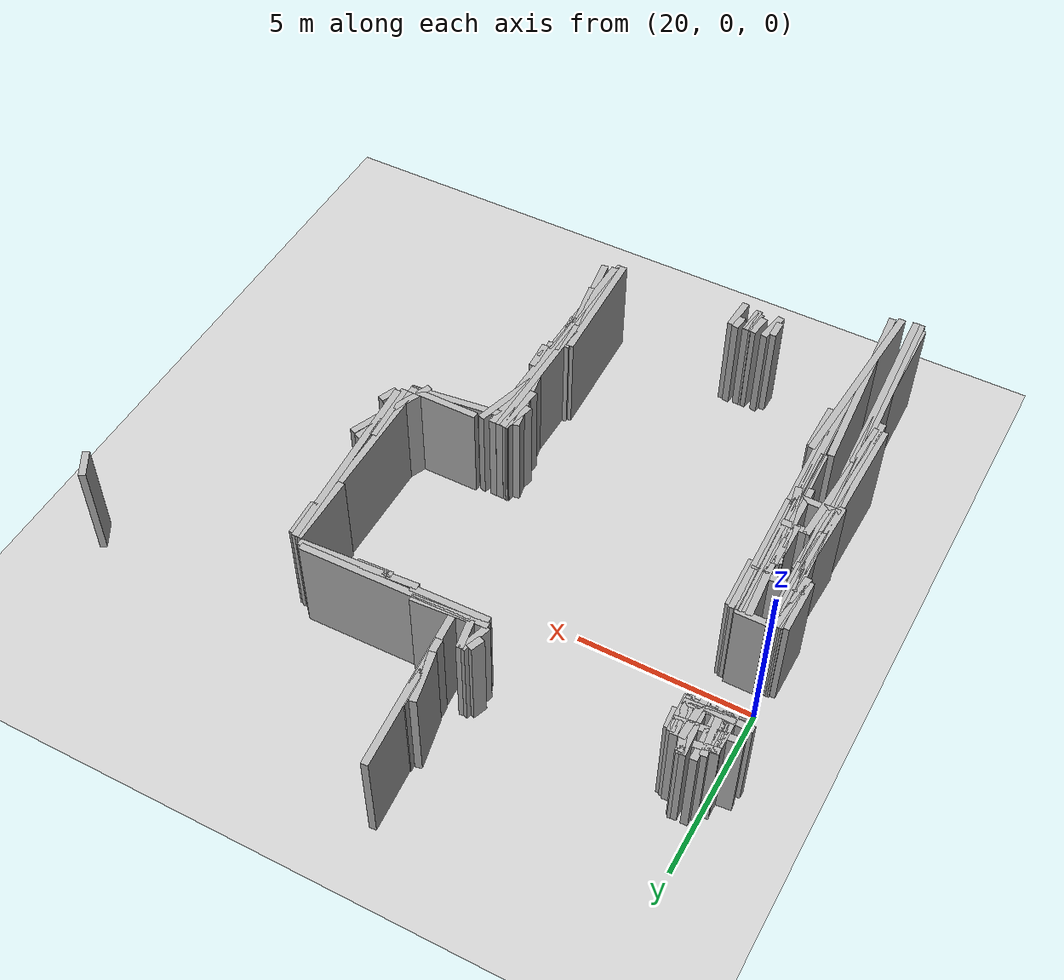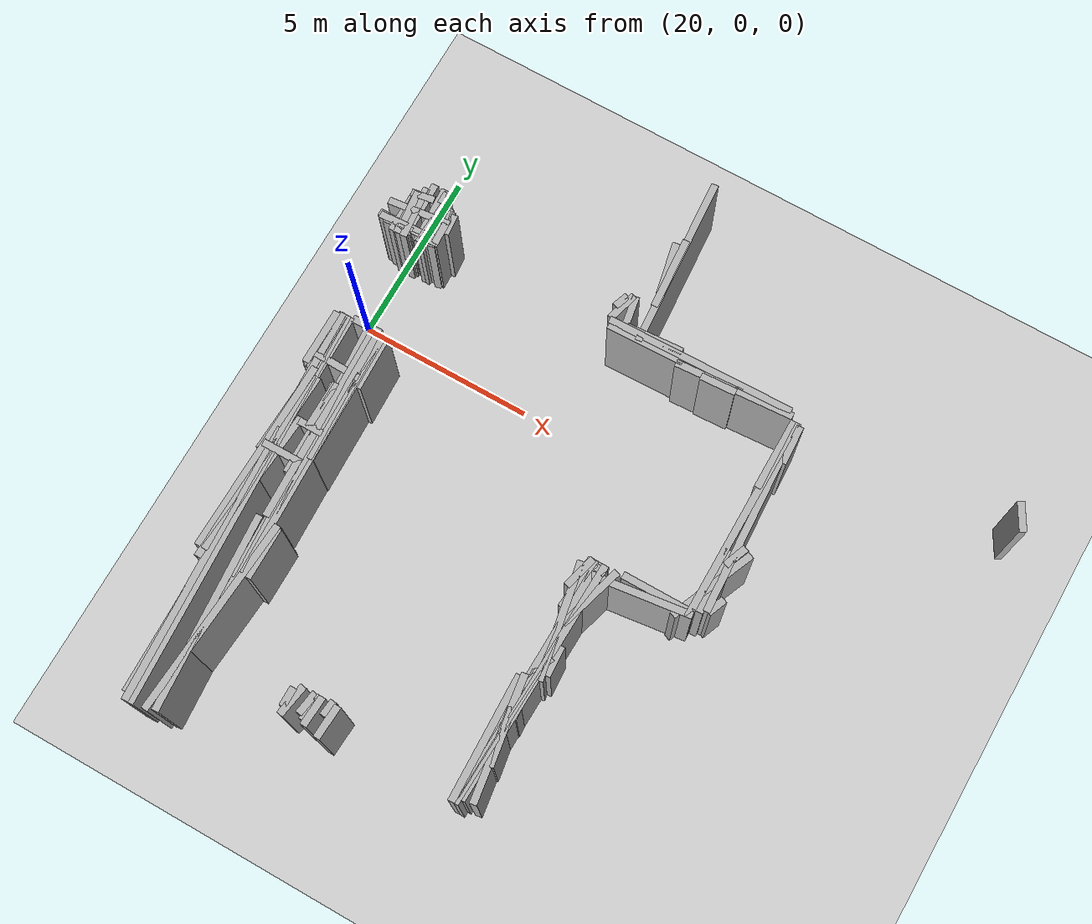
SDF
<sdf version="1.6">
 <world name="aboureyhan">
  <model name="ground_plane">
   <static>true</static>
   <link name="link">
    <collision name="collision">
     <geometry><plane><normal>0 0 1</normal><size>100 100</size></plane></geometry>
    </collision>
    <visual name="visual">
     <geometry><plane><normal>0 0 1</normal><size>500 500</size></plane></geometry>
     <material>
      <ambient>0.8 0.8 0.8 1</ambient>
      <diffuse>0.8 0.8 0.8 1</diffuse>
      <specular>0.8 0.8 0.8 1</specular>
     </material>
    </visual>
   </link>
  </model>
  <model name="wall_27">
   <static>true</static>
   <pose>20.3 -6.4250000000000025 1.5 0 0 -1.5184424652716213</pose>
   <link name="link">
    <collision name="collision">
     <geometry><box><size>11.465709746893125 0.2 3.0</size></box></geometry>
    </collision>
    <visual name="visual">
     <geometry><box><size>11.465709746893125 0.2 3.0</size></box></geometry>
     <material><ambient>0.5 0.5 0.5 1</ambient><diffuse>0.7 0.7 0.7 1</diffuse></material>
    </visual>
   </link>
  </model>
  <model name="wall_33">
   <static>true</static>
   <pose>20.450000000000003 -6.4250000000000025 1.5 0 0 -1.5184424652716215</pose>
   <link name="link">
    <collision name="collision">
     <geometry><box><size>11.465709746893124 0.2 3.0</size></box></geometry>
    </collision>
    <visual name="visual">
     <geometry><box><size>11.465709746893124 0.2 3.0</size></box></geometry>
     <material><ambient>0.5 0.5 0.5 1</ambient><diffuse>0.7 0.7 0.7 1</diffuse></material>
    </visual>
   </link>
  </model>
  <model name="wall_45">
   <static>true</static>
   <pose>21.225 -4.725000000000001 1.5 0 0 -1.5397504045508734</pose>
   <link name="link">
    <collision name="collision"><geometry><box><size>8.05388105201461 0.2 3.0</size></box></geometry></collision>
    <visual name="visual">
     <geometry><box><size>8.05388105201461 0.2 3.0</size></box></geometry>
     <material><ambient>0.5 0.5 0.5 1</ambient><diffuse>0.7 0.7 0.7 1</diffuse></material>
    </visual>
   </link>
  </model>
  <model name="wall_57">
   <static>true</static>
   <pose>20.6 -2.025000000000002 1.5 0 0 -0.033320995878250034</pose>
   <link name="link">
    <collision name="collision">
     <geometry><box><size>1.5008331019803636 0.2 3.0</size></box></geometry>
    </collision>
    <visual name="visual">
     <geometry><box><size>1.5008331019803636 0.2 3.0</size></box></geometry>
     <material><ambient>0.5 0.5 0.5 1</ambient><diffuse>0.7 0.7 0.7 1</diffuse></material>
    </visual>
   </link>
  </model>
  <model name="wall_59">
   <static>true</static>
   <pose>31.950000000000003 -2.25 1.5 0 0 -1.5152978215491828</pose>
   <link name="link">
    <collision name="collision">
     <geometry><box><size>1.8027756377319915 0.2 3.0</size></box></geometry>
    </collision>
    <visual name="visual">
     <geometry><box><size>1.8027756377319915 0.2 3.0</size></box></geometry>
     <material><ambient>0.5 0.5 0.5 1</ambient><diffuse>0.7 0.7 0.7 1</diffuse></material>
    </visual>
   </link>
  </model>
  <model name="wall_67">
   <static>true</static>
   <pose>21.050000000000004 -3.5500000000000007 1.5 0 0 -1.5357229962616714</pose>
   <link name="link">
    <collision name="collision">
     <geometry><box><size>5.7035076926396755 0.2 3.0</size></box></geometry>
    </collision>
    <visual name="visual">
     <geometry><box><size>5.7035076926396755 0.2 3.0</size></box></geometry>
     <material><ambient>0.5 0.5 0.5 1</ambient><diffuse>0.7 0.7 0.7 1</diffuse></material>
    </visual>
   </link>
  </model>
  <model name="wall_80">
   <static>true</static>
   <pose>20.1 -5.125000000000002 1.5 0 0 1.552780258240841</pose>
   <link name="link">
    <collision name="collision">
     <geometry><box><size>5.5509008277936305 0.2 3.0</size></box></geometry>
    </collision>
    <visual name="visual">
     <geometry><box><size>5.5509008277936305 0.2 3.0</size></box></geometry>
     <material><ambient>0.5 0.5 0.5 1</ambient><diffuse>0.7 0.7 0.7 1</diffuse></material>
    </visual>
   </link>
  </model>
  <model name="wall_88">
   <static>true</static>
   <pose>29.200000000000003 -8.375 1.5 0 0 -1.4268708774066805</pose>
   <link name="link">
    <collision name="collision">
     <geometry><box><size>3.4860436027106747 0.2 3.0</size></box></geometry>
    </collision>
    <visual name="visual">
     <geometry><box><size>3.4860436027106747 0.2 3.0</size></box></geometry>
     <material><ambient>0.5 0.5 0.5 1</ambient><diffuse>0.7 0.7 0.7 1</diffuse></material>
    </visual>
   </link>
  </model>
  <model name="wall_92">
   <static>true</static>
   <pose>21.200000000000003 -9.225000000000001 1.5 0 0 -1.498848657231514</pose>
   <link name="link">
    <collision name="collision"><geometry><box><size>5.564395744373325 0.2 3.0</size></box></geometry></collision>
    <visual name="visual">
     <geometry><box><size>5.564395744373325 0.2 3.0</size></box></geometry>
     <material><ambient>0.5 0.5 0.5 1</ambient><diffuse>0.7 0.7 0.7 1</diffuse></material>
    </visual>
   </link>
  </model>
  <model name="wall_93">
   <static>true</static>
   <pose>32.0 -0.27500000000000213 1.5 0 0 -1.5167948264189277</pose>
   <link name="link">
    <collision name="collision"><geometry><box><size>5.558102194094676 0.2 3.0</size></box></geometry></collision>
    <visual name="visual">
     <geometry><box><size>5.558102194094676 0.2 3.0</size></box></geometry>
     <material><ambient>0.5 0.5 0.5 1</ambient><diffuse>0.7 0.7 0.7 1</diffuse></material>
    </visual>
   </link>
  </model>
  <model name="wall_98">
   <static>true</static>
   <pose>25.125 -9.825000000000001 1.5 0 0 1.4601391056210071</pose>
   <link name="link">
    <collision name="collision">
     <geometry><box><size>0.4527692569068698 0.2 3.0</size></box></geometry>
    </collision>
    <visual name="visual">
     <geometry><box><size>0.4527692569068698 0.2 3.0</size></box></geometry>
     <material><ambient>0.5 0.5 0.5 1</ambient><diffuse>0.7 0.7 0.7 1</diffuse></material>
    </visual>
   </link>
  </model>
  <model name="wall_102">
   <static>true</static>
   <pose>21.375 -1.5250000000000021 1.5 0 0 -1.5385494443596424</pose>
   <link name="link">
    <collision name="collision">
     <geometry><box><size>1.5508062419270865 0.2 3.0</size></box></geometry>
    </collision>
    <visual name="visual">
     <geometry><box><size>1.5508062419270865 0.2 3.0</size></box></geometry>
     <material><ambient>0.5 0.5 0.5 1</ambient><diffuse>0.7 0.7 0.7 1</diffuse></material>
    </visual>
   </link>
  </model>
  <model name="wall_103">
   <static>true</static>
   <pose>28.900000000000002 -8.525 1.5 0 0 -1.5426347598070038</pose>
   <link name="link">
    <collision name="collision">
     <geometry><box><size>3.5514081714159533 0.2 3.0</size></box></geometry>
    </collision>
    <visual name="visual">
     <geometry><box><size>3.5514081714159533 0.2 3.0</size></box></geometry>
     <material><ambient>0.5 0.5 0.5 1</ambient><diffuse>0.7 0.7 0.7 1</diffuse></material>
    </visual>
   </link>
  </model>
  <model name="wall_107">
   <static>true</static>
   <pose>19.85 -1.5500000000000007 1.5 0 0 -1.5707963267948966</pose>
   <link name="link">
    <collision name="collision">
     <geometry><box><size>1.6000000000000014 0.2 3.0</size></box></geometry>
    </collision>
    <visual name="visual">
     <geometry><box><size>1.6000000000000014 0.2 3.0</size></box></geometry>
     <material><ambient>0.5 0.5 0.5 1</ambient><diffuse>0.7 0.7 0.7 1</diffuse></material>
    </visual>
   </link>
  </model>
  <model name="wall_117">
   <static>true</static>
   <pose>21.3 -2.6250000000000036 1.5 0 0 -1.5448281395833399</pose>
   <link name="link">
    <collision name="collision"><geometry><box><size>3.851298482330344 0.2 3.0</size></box></geometry></collision>
    <visual name="visual">
     <geometry><box><size>3.851298482330344 0.2 3.0</size></box></geometry>
     <material><ambient>0.5 0.5 0.5 1</ambient><diffuse>0.7 0.7 0.7 1</diffuse></material>
    </visual>
   </link>
  </model>
  <model name="wall_124">
   <static>true</static>
   <pose>20.200000000000003 -2.325000000000003 1.5 0 0 1.5707963267948966</pose>
   <link name="link">
    <collision name="collision"><geometry><box><size>3.25 0.2 3.0</size></box></geometry></collision>
    <visual name="visual">
     <geometry><box><size>3.25 0.2 3.0</size></box></geometry>
     <material><ambient>0.5 0.5 0.5 1</ambient><diffuse>0.7 0.7 0.7 1</diffuse></material>
    </visual>
   </link>
  </model>
  <model name="wall_128">
   <static>true</static>
   <pose>20.275000000000002 2.25 1.5 0 0 0.05708078240626137</pose>
   <link name="link">
    <collision name="collision"><geometry><box><size>1.75285481429581 0.2 3.0</size></box></geometry></collision>
    <visual name="visual">
     <geometry><box><size>1.75285481429581 0.2 3.0</size></box></geometry>
     <material><ambient>0.5 0.5 0.5 1</ambient><diffuse>0.7 0.7 0.7 1</diffuse></material>
    </visual>
   </link>
  </model>
  <model name="wall_144">
   <static>true</static>
   <pose>29.975000000000005 2.5 1.5 0 0 0.05963071313117021</pose>
   <link name="link">
    <collision name="collision">
     <geometry><box><size>3.3559648389099683 0.2 3.0</size></box></geometry>
    </collision>
    <visual name="visual">
     <geometry><box><size>3.3559648389099683 0.2 3.0</size></box></geometry>
     <material><ambient>0.5 0.5 0.5 1</ambient><diffuse>0.7 0.7 0.7 1</diffuse></material>
    </visual>
   </link>
  </model>
  <model name="wall_155">
   <static>true</static>
   <pose>21.075000000000003 2.650000000000002 1.5 0 0 -1.525373047373319</pose>
   <link name="link">
    <collision name="collision">
     <geometry><box><size>1.1011357772772634 0.2 3.0</size></box></geometry>
    </collision>
    <visual name="visual">
     <geometry><box><size>1.1011357772772634 0.2 3.0</size></box></geometry>
     <material><ambient>0.5 0.5 0.5 1</ambient><diffuse>0.7 0.7 0.7 1</diffuse></material>
    </visual>
   </link>
  </model>
  <model name="wall_161">
   <static>true</static>
   <pose>28.875000000000004 2.650000000000002 1.5 0 0 0.018689412446905924</pose>
   <link name="link">
    <collision name="collision"><geometry><box><size>5.350934497823723 0.2 3.0</size></box></geometry></collision>
    <visual name="visual">
     <geometry><box><size>5.350934497823723 0.2 3.0</size></box></geometry>
     <material><ambient>0.5 0.5 0.5 1</ambient><diffuse>0.7 0.7 0.7 1</diffuse></material>
    </visual>
   </link>
  </model>
  <model name="wall_172">
   <static>true</static>
   <pose>29.550000000000004 2.4250000000000007 1.5 0 0 0.04995839572194701</pose>
   <link name="link">
    <collision name="collision">
     <geometry><box><size>1.0012492197250396 0.2 3.0</size></box></geometry>
    </collision>
    <visual name="visual">
     <geometry><box><size>1.0012492197250396 0.2 3.0</size></box></geometry>
     <material><ambient>0.5 0.5 0.5 1</ambient><diffuse>0.7 0.7 0.7 1</diffuse></material>
    </visual>
   </link>
  </model>
  <model name="wall_183">
   <static>true</static>
   <pose>21.6 -7.25 1.5 0 0 -1.5707963267948966</pose>
   <link name="link">
    <collision name="collision"><geometry><box><size>1.5 0.2 3.0</size></box></geometry></collision>
    <visual name="visual">
     <geometry><box><size>1.5 0.2 3.0</size></box></geometry>
     <material><ambient>0.5 0.5 0.5 1</ambient><diffuse>0.7 0.7 0.7 1</diffuse></material>
    </visual>
   </link>
  </model>
  <model name="wall_186">
   <static>true</static>
   <pose>20.025000000000002 2.6000000000000014 1.5 0 0 -1.4559197213779984</pose>
   <link name="link">
    <collision name="collision"><geometry><box><size>1.308625232830237 0.2 3.0</size></box></geometry></collision>
    <visual name="visual">
     <geometry><box><size>1.308625232830237 0.2 3.0</size></box></geometry>
     <material><ambient>0.5 0.5 0.5 1</ambient><diffuse>0.7 0.7 0.7 1</diffuse></material>
    </visual>
   </link>
  </model>
  <model name="wall_188">
   <static>true</static>
   <pose>20.05 -1.5750000000000028 1.5 0 0 1.5137155443886312</pose>
   <link name="link">
    <collision name="collision">
     <geometry><box><size>1.7528548142958105 0.2 3.0</size></box></geometry>
    </collision>
    <visual name="visual">
     <geometry><box><size>1.7528548142958105 0.2 3.0</size></box></geometry>
     <material><ambient>0.5 0.5 0.5 1</ambient><diffuse>0.7 0.7 0.7 1</diffuse></material>
    </visual>
   </link>
  </model>
  <model name="wall_189">
   <static>true</static>
   <pose>31.800000000000004 -0.4499999999999993 1.5 0 0 1.5707963267948966</pose>
   <link name="link">
    <collision name="collision"><geometry><box><size>5.899999999999999 0.2 3.0</size></box></geometry></collision>
    <visual name="visual">
     <geometry><box><size>5.899999999999999 0.2 3.0</size></box></geometry>
     <material><ambient>0.5 0.5 0.5 1</ambient><diffuse>0.7 0.7 0.7 1</diffuse></material>
    </visual>
   </link>
  </model>
  <model name="wall_190">
   <static>true</static>
   <pose>20.9 -2.0000000000000036 1.5 0 0 -1.4940244355251189</pose>
   <link name="link">
    <collision name="collision"><geometry><box><size>2.607680962081061 0.2 3.0</size></box></geometry></collision>
    <visual name="visual">
     <geometry><box><size>2.607680962081061 0.2 3.0</size></box></geometry>
     <material><ambient>0.5 0.5 0.5 1</ambient><diffuse>0.7 0.7 0.7 1</diffuse></material>
    </visual>
   </link>
  </model>
  <model name="wall_193">
   <static>true</static>
   <pose>21.325000000000003 -4.325000000000003 1.5 0 0 -1.5363272257953886</pose>
   <link name="link">
    <collision name="collision"><geometry><box><size>7.254309064273454 0.2 3.0</size></box></geometry></collision>
    <visual name="visual">
     <geometry><box><size>7.254309064273454 0.2 3.0</size></box></geometry>
     <material><ambient>0.5 0.5 0.5 1</ambient><diffuse>0.7 0.7 0.7 1</diffuse></material>
    </visual>
   </link>
  </model>
  <model name="wall_266">
   <static>true</static>
   <pose>26.975 4.900000000000002 1.5 0 0 -1.4994888620096074</pose>
   <link name="link">
    <collision name="collision"><geometry><box><size>4.912484096666368 0.2 3.0</size></box></geometry></collision>
    <visual name="visual">
     <geometry><box><size>4.912484096666368 0.2 3.0</size></box></geometry>
     <material><ambient>0.5 0.5 0.5 1</ambient><diffuse>0.7 0.7 0.7 1</diffuse></material>
    </visual>
   </link>
  </model>
  <model name="wall_273">
   <static>true</static>
   <pose>20.275000000000002 -5.350000000000003 1.5 0 0 1.544017015775131</pose>
   <link name="link">
    <collision name="collision"><geometry><box><size>5.602008568361885 0.2 3.0</size></box></geometry></collision>
    <visual name="visual">
     <geometry><box><size>5.602008568361885 0.2 3.0</size></box></geometry>
     <material><ambient>0.5 0.5 0.5 1</ambient><diffuse>0.7 0.7 0.7 1</diffuse></material>
    </visual>
   </link>
  </model>
  <model name="wall_300">
   <static>true</static>
   <pose>19.900000000000002 2.6000000000000014 1.5 0 0 1.5707963267948966</pose>
   <link name="link">
    <collision name="collision">
     <geometry><box><size>1.2999999999999972 0.2 3.0</size></box></geometry>
    </collision>
    <visual name="visual">
     <geometry><box><size>1.2999999999999972 0.2 3.0</size></box></geometry>
     <material><ambient>0.5 0.5 0.5 1</ambient><diffuse>0.7 0.7 0.7 1</diffuse></material>
    </visual>
   </link>
  </model>
  <model name="wall_304">
   <static>true</static>
   <pose>20.6 2.8249999999999993 1.5 0 0 -1.5102643070127886</pose>
   <link name="link">
    <collision name="collision">
     <geometry><box><size>1.6530275254816527 0.2 3.0</size></box></geometry>
    </collision>
    <visual name="visual">
     <geometry><box><size>1.6530275254816527 0.2 3.0</size></box></geometry>
     <material><ambient>0.5 0.5 0.5 1</ambient><diffuse>0.7 0.7 0.7 1</diffuse></material>
    </visual>
   </link>
  </model>
  <model name="wall_317">
   <static>true</static>
   <pose>20.900000000000002 -2.900000000000002 1.5 0 0 1.5707963267948966</pose>
   <link name="link">
    <collision name="collision">
     <geometry><box><size>0.8999999999999986 0.2 3.0</size></box></geometry>
    </collision>
    <visual name="visual">
     <geometry><box><size>0.8999999999999986 0.2 3.0</size></box></geometry>
     <material><ambient>0.5 0.5 0.5 1</ambient><diffuse>0.7 0.7 0.7 1</diffuse></material>
    </visual>
   </link>
  </model>
  <model name="wall_325">
   <static>true</static>
   <pose>30.875000000000004 -3.25 1.5 0 0 0.0</pose>
   <link name="link">
    <collision name="collision">
     <geometry><box><size>2.0500000000000043 0.2 3.0</size></box></geometry>
    </collision>
    <visual name="visual">
     <geometry><box><size>2.0500000000000043 0.2 3.0</size></box></geometry>
     <material><ambient>0.5 0.5 0.5 1</ambient><diffuse>0.7 0.7 0.7 1</diffuse></material>
    </visual>
   </link>
  </model>
  <model name="wall_326">
   <static>true</static>
   <pose>21.35 -9.275000000000002 1.5 0 0 1.5001177927442912</pose>
   <link name="link">
    <collision name="collision"><geometry><box><size>5.664141594275339 0.2 3.0</size></box></geometry></collision>
    <visual name="visual">
     <geometry><box><size>5.664141594275339 0.2 3.0</size></box></geometry>
     <material><ambient>0.5 0.5 0.5 1</ambient><diffuse>0.7 0.7 0.7 1</diffuse></material>
    </visual>
   </link>
  </model>
  <model name="wall_330">
   <static>true</static>
   <pose>29.075 -6.725000000000001 1.5 0 0 1.5492169432283667</pose>
   <link name="link">
    <collision name="collision"><geometry><box><size>6.951618516575837 0.2 3.0</size></box></geometry></collision>
    <visual name="visual">
     <geometry><box><size>6.951618516575837 0.2 3.0</size></box></geometry>
     <material><ambient>0.5 0.5 0.5 1</ambient><diffuse>0.7 0.7 0.7 1</diffuse></material>
    </visual>
   </link>
  </model>
  <model name="wall_335">
   <static>true</static>
   <pose>29.2 -7.125000000000002 1.5 0 0 -1.4968572891369551</pose>
   <link name="link">
    <collision name="collision">
     <geometry><box><size>1.3536986370680864 0.2 3.0</size></box></geometry>
    </collision>
    <visual name="visual">
     <geometry><box><size>1.3536986370680864 0.2 3.0</size></box></geometry>
     <material><ambient>0.5 0.5 0.5 1</ambient><diffuse>0.7 0.7 0.7 1</diffuse></material>
    </visual>
   </link>
  </model>
  <model name="wall_351">
   <static>true</static>
   <pose>27.35 2.4750000000000014 1.5 0 0 0.022723360841639745</pose>
   <link name="link">
    <collision name="collision"><geometry><box><size>2.200568108466541 0.2 3.0</size></box></geometry></collision>
    <visual name="visual">
     <geometry><box><size>2.200568108466541 0.2 3.0</size></box></geometry>
     <material><ambient>0.5 0.5 0.5 1</ambient><diffuse>0.7 0.7 0.7 1</diffuse></material>
    </visual>
   </link>
  </model>
  <model name="wall_377">
   <static>true</static>
   <pose>20.625 -4.75 1.5 0 0 0.0</pose>
   <link name="link">
    <collision name="collision">
     <geometry><box><size>1.1500000000000021 0.2 3.0</size></box></geometry>
    </collision>
    <visual name="visual">
     <geometry><box><size>1.1500000000000021 0.2 3.0</size></box></geometry>
     <material><ambient>0.5 0.5 0.5 1</ambient><diffuse>0.7 0.7 0.7 1</diffuse></material>
    </visual>
   </link>
  </model>
  <model name="wall_406">
   <static>true</static>
   <pose>20.725 2.625 1.5 0 0 1.5308176396716089</pose>
   <link name="link">
    <collision name="collision">
     <geometry><box><size>1.2509996003196802 0.2 3.0</size></box></geometry>
    </collision>
    <visual name="visual">
     <geometry><box><size>1.2509996003196802 0.2 3.0</size></box></geometry>
     <material><ambient>0.5 0.5 0.5 1</ambient><diffuse>0.7 0.7 0.7 1</diffuse></material>
    </visual>
   </link>
  </model>
  <model name="wall_435">
   <static>true</static>
   <pose>20.1 -3.7250000000000014 1.5 0 0 1.5300026439270307</pose>
   <link name="link">
    <collision name="collision">
     <geometry><box><size>2.4520399670478485 0.2 3.0</size></box></geometry>
    </collision>
    <visual name="visual">
     <geometry><box><size>2.4520399670478485 0.2 3.0</size></box></geometry>
     <material><ambient>0.5 0.5 0.5 1</ambient><diffuse>0.7 0.7 0.7 1</diffuse></material>
    </visual>
   </link>
  </model>
  <model name="wall_442">
   <static>true</static>
   <pose>29.25 -6.700000000000001 1.5 0 0 1.541818932943335</pose>
   <link name="link">
    <collision name="collision"><geometry><box><size>6.902897942168928 0.2 3.0</size></box></geometry></collision>
    <visual name="visual">
     <geometry><box><size>6.902897942168928 0.2 3.0</size></box></geometry>
     <material><ambient>0.5 0.5 0.5 1</ambient><diffuse>0.7 0.7 0.7 1</diffuse></material>
    </visual>
   </link>
  </model>
  <model name="wall_474">
   <static>true</static>
   <pose>25.275000000000002 -10.125000000000002 1.5 0 0 1.5182132651839504</pose>
   <link name="link">
    <collision name="collision">
     <geometry><box><size>0.9513148795220219 0.2 3.0</size></box></geometry>
    </collision>
    <visual name="visual">
     <geometry><box><size>0.9513148795220219 0.2 3.0</size></box></geometry>
     <material><ambient>0.5 0.5 0.5 1</ambient><diffuse>0.7 0.7 0.7 1</diffuse></material>
    </visual>
   </link>
  </model>
  <model name="wall_483">
   <static>true</static>
   <pose>24.6 -9.975000000000001 1.5 0 0 1.4181469983996398</pose>
   <link name="link">
    <collision name="collision"><geometry><box><size>0.657647321898293 0.2 3.0</size></box></geometry></collision>
    <visual name="visual">
     <geometry><box><size>0.657647321898293 0.2 3.0</size></box></geometry>
     <material><ambient>0.5 0.5 0.5 1</ambient><diffuse>0.7 0.7 0.7 1</diffuse></material>
    </visual>
   </link>
  </model>
  <model name="wall_523">
   <static>true</static>
   <pose>31.975 1.9000000000000021 1.5 0 0 -1.5253730473733222</pose>
   <link name="link">
    <collision name="collision">
     <geometry><box><size>1.1011357772772632 0.2 3.0</size></box></geometry>
    </collision>
    <visual name="visual">
     <geometry><box><size>1.1011357772772632 0.2 3.0</size></box></geometry>
     <material><ambient>0.5 0.5 0.5 1</ambient><diffuse>0.7 0.7 0.7 1</diffuse></material>
    </visual>
   </link>
  </model>
  <model name="wall_559">
   <static>true</static>
   <pose>20.650000000000002 3.4250000000000007 1.5 0 0 -1.5707963267948966</pose>
   <link name="link">
    <collision name="collision">
     <geometry><box><size>0.3500000000000014 0.2 3.0</size></box></geometry>
    </collision>
    <visual name="visual">
     <geometry><box><size>0.3500000000000014 0.2 3.0</size></box></geometry>
     <material><ambient>0.5 0.5 0.5 1</ambient><diffuse>0.7 0.7 0.7 1</diffuse></material>
    </visual>
   </link>
  </model>
  <model name="wall_571">
   <static>true</static>
   <pose>20.4 -5.8000000000000025 1.5 0 0 1.499488862009606</pose>
   <link name="link">
    <collision name="collision"><geometry><box><size>4.210700654285459 0.2 3.0</size></box></geometry></collision>
    <visual name="visual">
     <geometry><box><size>4.210700654285459 0.2 3.0</size></box></geometry>
     <material><ambient>0.5 0.5 0.5 1</ambient><diffuse>0.7 0.7 0.7 1</diffuse></material>
    </visual>
   </link>
  </model>
  <model name="wall_574">
   <static>true</static>
   <pose>26.575 3.0749999999999993 1.5 0 0 -1.3961241277866587</pose>
   <link name="link">
    <collision name="collision">
     <geometry><box><size>0.8631338250816045 0.2 3.0</size></box></geometry>
    </collision>
    <visual name="visual">
     <geometry><box><size>0.8631338250816045 0.2 3.0</size></box></geometry>
     <material><ambient>0.5 0.5 0.5 1</ambient><diffuse>0.7 0.7 0.7 1</diffuse></material>
    </visual>
   </link>
  </model>
  <model name="wall_591">
   <static>true</static>
   <pose>20.825000000000003 2.849999999999998 1.5 0 0 -1.2966288756752384</pose>
   <link name="link">
    <collision name="collision">
     <geometry><box><size>1.6620770138594672 0.2 3.0</size></box></geometry>
    </collision>
    <visual name="visual">
     <geometry><box><size>1.6620770138594672 0.2 3.0</size></box></geometry>
     <material><ambient>0.5 0.5 0.5 1</ambient><diffuse>0.7 0.7 0.7 1</diffuse></material>
    </visual>
   </link>
  </model>
  <model name="wall_597">
   <static>true</static>
   <pose>26.85 4.625 1.5 0 0 -1.3667783472023503</pose>
   <link name="link">
    <collision name="collision">
     <geometry><box><size>1.4807092894960867 0.2 3.0</size></box></geometry>
    </collision>
    <visual name="visual">
     <geometry><box><size>1.4807092894960867 0.2 3.0</size></box></geometry>
     <material><ambient>0.5 0.5 0.5 1</ambient><diffuse>0.7 0.7 0.7 1</diffuse></material>
    </visual>
   </link>
  </model>
  <model name="wall_607">
   <static>true</static>
   <pose>26.225 3.1999999999999993 1.5 0 0 1.2120256565243108</pose>
   <link name="link">
    <collision name="collision">
     <geometry><box><size>0.4272001872658772 0.2 3.0</size></box></geometry>
    </collision>
    <visual name="visual">
     <geometry><box><size>0.4272001872658772 0.2 3.0</size></box></geometry>
     <material><ambient>0.5 0.5 0.5 1</ambient><diffuse>0.7 0.7 0.7 1</diffuse></material>
    </visual>
   </link>
  </model>
  <model name="wall_612">
   <static>true</static>
   <pose>24.825000000000003 -10.075000000000001 1.5 0 0 1.5120405040791771</pose>
   <link name="link">
    <collision name="collision">
     <geometry><box><size>0.8514693182963178 0.2 3.0</size></box></geometry>
    </collision>
    <visual name="visual">
     <geometry><box><size>0.8514693182963178 0.2 3.0</size></box></geometry>
     <material><ambient>0.5 0.5 0.5 1</ambient><diffuse>0.7 0.7 0.7 1</diffuse></material>
    </visual>
   </link>
  </model>
  <model name="wall_621">
   <static>true</static>
   <pose>21.15 -4.4250000000000025 1.5 0 0 -1.530549615019756</pose>
   <link name="link">
    <collision name="collision"><geometry><box><size>7.456037821792483 0.2 3.0</size></box></geometry></collision>
    <visual name="visual">
     <geometry><box><size>7.456037821792483 0.2 3.0</size></box></geometry>
     <material><ambient>0.5 0.5 0.5 1</ambient><diffuse>0.7 0.7 0.7 1</diffuse></material>
    </visual>
   </link>
  </model>
  <model name="wall_624">
   <static>true</static>
   <pose>29.425 -6.025000000000002 1.5 0 0 -1.5120405040791691</pose>
   <link name="link">
    <collision name="collision">
     <geometry><box><size>0.8514693182963217 0.2 3.0</size></box></geometry>
    </collision>
    <visual name="visual">
     <geometry><box><size>0.8514693182963217 0.2 3.0</size></box></geometry>
     <material><ambient>0.5 0.5 0.5 1</ambient><diffuse>0.7 0.7 0.7 1</diffuse></material>
    </visual>
   </link>
  </model>
  <model name="wall_645">
   <static>true</static>
   <pose>20.275 -1.7500000000000036 1.5 0 0 -1.5469913006098264</pose>
   <link name="link">
    <collision name="collision">
     <geometry><box><size>2.1005951537600023 0.2 3.0</size></box></geometry>
    </collision>
    <visual name="visual">
     <geometry><box><size>2.1005951537600023 0.2 3.0</size></box></geometry>
     <material><ambient>0.5 0.5 0.5 1</ambient><diffuse>0.7 0.7 0.7 1</diffuse></material>
    </visual>
   </link>
  </model>
  <model name="wall_659">
   <static>true</static>
   <pose>20.0 -1.5750000000000028 1.5 0 0 1.5137155443886332</pose>
   <link name="link">
    <collision name="collision">
     <geometry><box><size>1.7528548142958102 0.2 3.0</size></box></geometry>
    </collision>
    <visual name="visual">
     <geometry><box><size>1.7528548142958102 0.2 3.0</size></box></geometry>
     <material><ambient>0.5 0.5 0.5 1</ambient><diffuse>0.7 0.7 0.7 1</diffuse></material>
    </visual>
   </link>
  </model>
  <model name="wall_660">
   <static>true</static>
   <pose>20.275 2.849999999999998 1.5 0 0 -1.539556493364628</pose>
   <link name="link">
    <collision name="collision">
     <geometry><box><size>1.6007810593582135 0.2 3.0</size></box></geometry>
    </collision>
    <visual name="visual">
     <geometry><box><size>1.6007810593582135 0.2 3.0</size></box></geometry>
     <material><ambient>0.5 0.5 0.5 1</ambient><diffuse>0.7 0.7 0.7 1</diffuse></material>
    </visual>
   </link>
  </model>
  <model name="wall_663">
   <static>true</static>
   <pose>20.175 2.700000000000003 1.5 0 0 -1.4711276743037356</pose>
   <link name="link">
    <collision name="collision">
     <geometry><box><size>1.5074813431681333 0.2 3.0</size></box></geometry>
    </collision>
    <visual name="visual">
     <geometry><box><size>1.5074813431681333 0.2 3.0</size></box></geometry>
     <material><ambient>0.5 0.5 0.5 1</ambient><diffuse>0.7 0.7 0.7 1</diffuse></material>
    </visual>
   </link>
  </model>
  <model name="wall_664">
   <static>true</static>
   <pose>28.975 -4.0 1.5 0 0 1.471127674303731</pose>
   <link name="link">
    <collision name="collision">
     <geometry><box><size>1.5074813431681342 0.2 3.0</size></box></geometry>
    </collision>
    <visual name="visual">
     <geometry><box><size>1.5074813431681342 0.2 3.0</size></box></geometry>
     <material><ambient>0.5 0.5 0.5 1</ambient><diffuse>0.7 0.7 0.7 1</diffuse></material>
    </visual>
   </link>
  </model>
  <model name="wall_666">
   <static>true</static>
   <pose>20.85 -3.150000000000002 1.5 0 0 -1.5707963267948966</pose>
   <link name="link">
    <collision name="collision">
     <geometry><box><size>1.3999999999999986 0.2 3.0</size></box></geometry>
    </collision>
    <visual name="visual">
     <geometry><box><size>1.3999999999999986 0.2 3.0</size></box></geometry>
     <material><ambient>0.5 0.5 0.5 1</ambient><diffuse>0.7 0.7 0.7 1</diffuse></material>
    </visual>
   </link>
  </model>
  <model name="wall_694">
   <static>true</static>
   <pose>28.875 -3.7250000000000014 1.5 0 0 1.3134726118238087</pose>
   <link name="link">
    <collision name="collision">
     <geometry><box><size>0.9823441352194278 0.2 3.0</size></box></geometry>
    </collision>
    <visual name="visual">
     <geometry><box><size>0.9823441352194278 0.2 3.0</size></box></geometry>
     <material><ambient>0.5 0.5 0.5 1</ambient><diffuse>0.7 0.7 0.7 1</diffuse></material>
    </visual>
   </link>
  </model>
  <model name="wall_696">
   <static>true</static>
   <pose>20.25 2.2250000000000014 1.5 0 0 -0.027770636593419447</pose>
   <link name="link">
    <collision name="collision"><geometry><box><size>1.800694310536911 0.2 3.0</size></box></geometry></collision>
    <visual name="visual">
     <geometry><box><size>1.800694310536911 0.2 3.0</size></box></geometry>
     <material><ambient>0.5 0.5 0.5 1</ambient><diffuse>0.7 0.7 0.7 1</diffuse></material>
    </visual>
   </link>
  </model>
  <model name="wall_698">
   <static>true</static>
   <pose>20.275000000000002 2.75 1.5 0 0 0.11379200714370967</pose>
   <link name="link">
    <collision name="collision"><geometry><box><size>1.761391495380854 0.2 3.0</size></box></geometry></collision>
    <visual name="visual">
     <geometry><box><size>1.761391495380854 0.2 3.0</size></box></geometry>
     <material><ambient>0.5 0.5 0.5 1</ambient><diffuse>0.7 0.7 0.7 1</diffuse></material>
    </visual>
   </link>
  </model>
  <model name="wall_703">
   <static>true</static>
   <pose>29.05 -5.050000000000001 1.5 0 0 -1.3854483767992012</pose>
   <link name="link">
    <collision name="collision">
     <geometry><box><size>3.2557641192199376 0.2 3.0</size></box></geometry>
    </collision>
    <visual name="visual">
     <geometry><box><size>3.2557641192199376 0.2 3.0</size></box></geometry>
     <material><ambient>0.5 0.5 0.5 1</ambient><diffuse>0.7 0.7 0.7 1</diffuse></material>
    </visual>
   </link>
  </model>
  <model name="wall_704">
   <static>true</static>
   <pose>29.225 -8.325000000000003 1.5 0 0 -1.410883203636677</pose>
   <link name="link">
    <collision name="collision">
     <geometry><box><size>1.5700318468107552 0.2 3.0</size></box></geometry>
    </collision>
    <visual name="visual">
     <geometry><box><size>1.5700318468107552 0.2 3.0</size></box></geometry>
     <material><ambient>0.5 0.5 0.5 1</ambient><diffuse>0.7 0.7 0.7 1</diffuse></material>
    </visual>
   </link>
  </model>
  <model name="wall_710">
   <static>true</static>
   <pose>31.75 1.4750000000000014 1.5 0 0 1.5707963267948966</pose>
   <link name="link">
    <collision name="collision"><geometry><box><size>2.049999999999997 0.2 3.0</size></box></geometry></collision>
    <visual name="visual">
     <geometry><box><size>2.049999999999997 0.2 3.0</size></box></geometry>
     <material><ambient>0.5 0.5 0.5 1</ambient><diffuse>0.7 0.7 0.7 1</diffuse></material>
    </visual>
   </link>
  </model>
  <model name="wall_721">
   <static>true</static>
   <pose>20.125 3.1999999999999993 1.5 0 0 0.1526493283952668</pose>
   <link name="link">
    <collision name="collision">
     <geometry><box><size>0.6576473218982976 0.2 3.0</size></box></geometry>
    </collision>
    <visual name="visual">
     <geometry><box><size>0.6576473218982976 0.2 3.0</size></box></geometry>
     <material><ambient>0.5 0.5 0.5 1</ambient><diffuse>0.7 0.7 0.7 1</diffuse></material>
    </visual>
   </link>
  </model>
  <model name="wall_722">
   <static>true</static>
   <pose>24.225 -10.100000000000001 1.5 0 0 1.405647649380271</pose>
   <link name="link">
    <collision name="collision">
     <geometry><box><size>0.9124143795447313 0.2 3.0</size></box></geometry>
    </collision>
    <visual name="visual">
     <geometry><box><size>0.9124143795447313 0.2 3.0</size></box></geometry>
     <material><ambient>0.5 0.5 0.5 1</ambient><diffuse>0.7 0.7 0.7 1</diffuse></material>
    </visual>
   </link>
  </model>
  <model name="wall_723">
   <static>true</static>
   <pose>26.975 4.524999999999999 1.5 0 0 -1.4977557614917745</pose>
   <link name="link">
    <collision name="collision">
     <geometry><box><size>2.0554804791094443 0.2 3.0</size></box></geometry>
    </collision>
    <visual name="visual">
     <geometry><box><size>2.0554804791094443 0.2 3.0</size></box></geometry>
     <material><ambient>0.5 0.5 0.5 1</ambient><diffuse>0.7 0.7 0.7 1</diffuse></material>
    </visual>
   </link>
  </model>
  <model name="wall_730">
   <static>true</static>
   <pose>31.950000000000003 -2.3750000000000036 1.5 0 0 1.1684752289344562</pose>
   <link name="link">
    <collision name="collision">
     <geometry><box><size>2.5539185578244283 0.2 3.0</size></box></geometry>
    </collision>
    <visual name="visual">
     <geometry><box><size>2.5539185578244283 0.2 3.0</size></box></geometry>
     <material><ambient>0.5 0.5 0.5 1</ambient><diffuse>0.7 0.7 0.7 1</diffuse></material>
    </visual>
   </link>
  </model>
  <model name="wall_735">
   <static>true</static>
   <pose>38.0 3.1000000000000014 1.5 0 0 -1.0516502125483769</pose>
   <link name="link">
    <collision name="collision">
     <geometry><box><size>0.8062257748298567 0.2 3.0</size></box></geometry>
    </collision>
    <visual name="visual">
     <geometry><box><size>0.8062257748298567 0.2 3.0</size></box></geometry>
     <material><ambient>0.5 0.5 0.5 1</ambient><diffuse>0.7 0.7 0.7 1</diffuse></material>
    </visual>
   </link>
  </model>
  <model name="wall_739">
   <static>true</static>
   <pose>20.0 2.525000000000002 1.5 0 0 -1.4840579881189133</pose>
   <link name="link">
    <collision name="collision">
     <geometry><box><size>1.1543396380615178 0.2 3.0</size></box></geometry>
    </collision>
    <visual name="visual">
     <geometry><box><size>1.1543396380615178 0.2 3.0</size></box></geometry>
     <material><ambient>0.5 0.5 0.5 1</ambient><diffuse>0.7 0.7 0.7 1</diffuse></material>
    </visual>
   </link>
  </model>
  <model name="wall_754">
   <static>true</static>
   <pose>21.0 2.6750000000000007 1.5 0 0 -1.4840579881189133</pose>
   <link name="link">
    <collision name="collision">
     <geometry><box><size>1.1543396380615178 0.2 3.0</size></box></geometry>
    </collision>
    <visual name="visual">
     <geometry><box><size>1.1543396380615178 0.2 3.0</size></box></geometry>
     <material><ambient>0.5 0.5 0.5 1</ambient><diffuse>0.7 0.7 0.7 1</diffuse></material>
    </visual>
   </link>
  </model>
  <model name="wall_769">
   <static>true</static>
   <pose>29.125000000000004 -8.35 1.5 0 0 1.532353736773709</pose>
   <link name="link">
    <collision name="collision"><geometry><box><size>3.902883549377308 0.2 3.0</size></box></geometry></collision>
    <visual name="visual">
     <geometry><box><size>3.902883549377308 0.2 3.0</size></box></geometry>
     <material><ambient>0.5 0.5 0.5 1</ambient><diffuse>0.7 0.7 0.7 1</diffuse></material>
    </visual>
   </link>
  </model>
  <model name="wall_771">
   <static>true</static>
   <pose>21.05 -3.775000000000002 1.5 0 0 -1.3771743339389515</pose>
   <link name="link">
    <collision name="collision">
     <geometry><box><size>2.5985572920372606 0.2 3.0</size></box></geometry>
    </collision>
    <visual name="visual">
     <geometry><box><size>2.5985572920372606 0.2 3.0</size></box></geometry>
     <material><ambient>0.5 0.5 0.5 1</ambient><diffuse>0.7 0.7 0.7 1</diffuse></material>
    </visual>
   </link>
  </model>
  <model name="wall_787">
   <static>true</static>
   <pose>21.175000000000004 2.849999999999998 1.5 0 0 -1.4876550949064544</pose>
   <link name="link">
    <collision name="collision">
     <geometry><box><size>0.6020797289396163 0.2 3.0</size></box></geometry>
    </collision>
    <visual name="visual">
     <geometry><box><size>0.6020797289396163 0.2 3.0</size></box></geometry>
     <material><ambient>0.5 0.5 0.5 1</ambient><diffuse>0.7 0.7 0.7 1</diffuse></material>
    </visual>
   </link>
  </model>
  <model name="wall_788">
   <static>true</static>
   <pose>26.325000000000003 3.0749999999999993 1.5 0 0 1.284744885077579</pose>
   <link name="link">
    <collision name="collision">
     <geometry><box><size>0.8860022573334688 0.2 3.0</size></box></geometry>
    </collision>
    <visual name="visual">
     <geometry><box><size>0.8860022573334688 0.2 3.0</size></box></geometry>
     <material><ambient>0.5 0.5 0.5 1</ambient><diffuse>0.7 0.7 0.7 1</diffuse></material>
    </visual>
   </link>
  </model>
  <model name="wall_796">
   <static>true</static>
   <pose>20.975 -4.100000000000001 1.5 0 0 -1.546991300609828</pose>
   <link name="link">
    <collision name="collision">
     <geometry><box><size>2.1005951537599947 0.2 3.0</size></box></geometry>
    </collision>
    <visual name="visual">
     <geometry><box><size>2.1005951537599947 0.2 3.0</size></box></geometry>
     <material><ambient>0.5 0.5 0.5 1</ambient><diffuse>0.7 0.7 0.7 1</diffuse></material>
    </visual>
   </link>
  </model>
  <model name="wall_832">
   <static>true</static>
   <pose>32.125 -1.4250000000000007 1.5 0 0 1.2036224929766768</pose>
   <link name="link">
    <collision name="collision">
     <geometry><box><size>0.6964194138592047 0.2 3.0</size></box></geometry>
    </collision>
    <visual name="visual">
     <geometry><box><size>0.6964194138592047 0.2 3.0</size></box></geometry>
     <material><ambient>0.5 0.5 0.5 1</ambient><diffuse>0.7 0.7 0.7 1</diffuse></material>
    </visual>
   </link>
  </model>
  <model name="wall_837">
   <static>true</static>
   <pose>20.725 -0.7000000000000028 1.5 0 0 0.0</pose>
   <link name="link">
    <collision name="collision">
     <geometry><box><size>0.8500000000000014 0.2 3.0</size></box></geometry>
    </collision>
    <visual name="visual">
     <geometry><box><size>0.8500000000000014 0.2 3.0</size></box></geometry>
     <material><ambient>0.5 0.5 0.5 1</ambient><diffuse>0.7 0.7 0.7 1</diffuse></material>
    </visual>
   </link>
  </model>
  <model name="wall_841">
   <static>true</static>
   <pose>29.425 -4.175000000000001 1.5 0 0 1.2818209168023282</pose>
   <link name="link">
    <collision name="collision">
     <geometry><box><size>1.9300259065618808 0.2 3.0</size></box></geometry>
    </collision>
    <visual name="visual">
     <geometry><box><size>1.9300259065618808 0.2 3.0</size></box></geometry>
     <material><ambient>0.5 0.5 0.5 1</ambient><diffuse>0.7 0.7 0.7 1</diffuse></material>
    </visual>
   </link>
  </model>
  <model name="wall_847">
   <static>true</static>
   <pose>20.450000000000003 -9.225000000000001 1.5 0 0 -1.5524497616817767</pose>
   <link name="link">
    <collision name="collision"><geometry><box><size>5.450917353987311 0.2 3.0</size></box></geometry></collision>
    <visual name="visual">
     <geometry><box><size>5.450917353987311 0.2 3.0</size></box></geometry>
     <material><ambient>0.5 0.5 0.5 1</ambient><diffuse>0.7 0.7 0.7 1</diffuse></material>
    </visual>
   </link>
  </model>
  <model name="wall_874">
   <static>true</static>
   <pose>19.875 2.1750000000000007 1.5 0 0 0.07677189126978431</pose>
   <link name="link">
    <collision name="collision">
     <geometry><box><size>0.6519202405202673 0.2 3.0</size></box></geometry>
    </collision>
    <visual name="visual">
     <geometry><box><size>0.6519202405202673 0.2 3.0</size></box></geometry>
     <material><ambient>0.5 0.5 0.5 1</ambient><diffuse>0.7 0.7 0.7 1</diffuse></material>
    </visual>
   </link>
  </model>
  <model name="wall_894">
   <static>true</static>
   <pose>29.150000000000002 -3.400000000000002 1.5 0 0 -0.16514867741462877</pose>
   <link name="link">
    <collision name="collision">
     <geometry><box><size>0.6082762530298236 0.2 3.0</size></box></geometry>
    </collision>
    <visual name="visual">
     <geometry><box><size>0.6082762530298236 0.2 3.0</size></box></geometry>
     <material><ambient>0.5 0.5 0.5 1</ambient><diffuse>0.7 0.7 0.7 1</diffuse></material>
    </visual>
   </link>
  </model>
  <model name="wall_907">
   <static>true</static>
   <pose>24.750000000000004 -10.025000000000002 1.5 0 0 1.4382447944982208</pose>
   <link name="link">
    <collision name="collision"><geometry><box><size>0.756637297521078 0.2 3.0</size></box></geometry></collision>
    <visual name="visual">
     <geometry><box><size>0.756637297521078 0.2 3.0</size></box></geometry>
     <material><ambient>0.5 0.5 0.5 1</ambient><diffuse>0.7 0.7 0.7 1</diffuse></material>
    </visual>
   </link>
  </model>
  <model name="wall_917">
   <static>true</static>
   <pose>27.500000000000004 2.6999999999999993 1.5 0 0 0.062418809995958176</pose>
   <link name="link">
    <collision name="collision">
     <geometry><box><size>1.6031219541881412 0.2 3.0</size></box></geometry>
    </collision>
    <visual name="visual">
     <geometry><box><size>1.6031219541881412 0.2 3.0</size></box></geometry>
     <material><ambient>0.5 0.5 0.5 1</ambient><diffuse>0.7 0.7 0.7 1</diffuse></material>
    </visual>
   </link>
  </model>
  <model name="wall_919">
   <static>true</static>
   <pose>29.15 -6.824999999999999 1.5 0 0 1.2765617616837086</pose>
   <link name="link">
    <collision name="collision">
     <geometry><box><size>1.7240939649566653 0.2 3.0</size></box></geometry>
    </collision>
    <visual name="visual">
     <geometry><box><size>1.7240939649566653 0.2 3.0</size></box></geometry>
     <material><ambient>0.5 0.5 0.5 1</ambient><diffuse>0.7 0.7 0.7 1</diffuse></material>
    </visual>
   </link>
  </model>
  <model name="wall_955">
   <static>true</static>
   <pose>20.9 -3.8000000000000043 1.5 0 0 0.0</pose>
   <link name="link">
    <collision name="collision">
     <geometry><box><size>0.6999999999999993 0.2 3.0</size></box></geometry>
    </collision>
    <visual name="visual">
     <geometry><box><size>0.6999999999999993 0.2 3.0</size></box></geometry>
     <material><ambient>0.5 0.5 0.5 1</ambient><diffuse>0.7 0.7 0.7 1</diffuse></material>
    </visual>
   </link>
  </model>
  <model name="wall_978">
   <static>true</static>
   <pose>24.1 -10.075000000000001 1.5 0 0 1.5707963267948966</pose>
   <link name="link">
    <collision name="collision">
     <geometry><box><size>0.5500000000000007 0.2 3.0</size></box></geometry>
    </collision>
    <visual name="visual">
     <geometry><box><size>0.5500000000000007 0.2 3.0</size></box></geometry>
     <material><ambient>0.5 0.5 0.5 1</ambient><diffuse>0.7 0.7 0.7 1</diffuse></material>
    </visual>
   </link>
  </model>
  <model name="wall_988">
   <static>true</static>
   <pose>30.475000000000005 -3.4750000000000014 1.5 0 0 0.12219517069135302</pose>
   <link name="link">
    <collision name="collision">
     <geometry><box><size>2.8714108030722465 0.2 3.0</size></box></geometry>
    </collision>
    <visual name="visual">
     <geometry><box><size>2.8714108030722465 0.2 3.0</size></box></geometry>
     <material><ambient>0.5 0.5 0.5 1</ambient><diffuse>0.7 0.7 0.7 1</diffuse></material>
    </visual>
   </link>
  </model>
  <model name="wall_998">
   <static>true</static>
   <pose>32.300000000000004 -2.8000000000000043 1.5 0 0 1.1902899496825268</pose>
   <link name="link">
    <collision name="collision">
     <geometry><box><size>0.5385164807134515 0.2 3.0</size></box></geometry>
    </collision>
    <visual name="visual">
     <geometry><box><size>0.5385164807134515 0.2 3.0</size></box></geometry>
     <material><ambient>0.5 0.5 0.5 1</ambient><diffuse>0.7 0.7 0.7 1</diffuse></material>
    </visual>
   </link>
  </model>
 </world>
</sdf>
